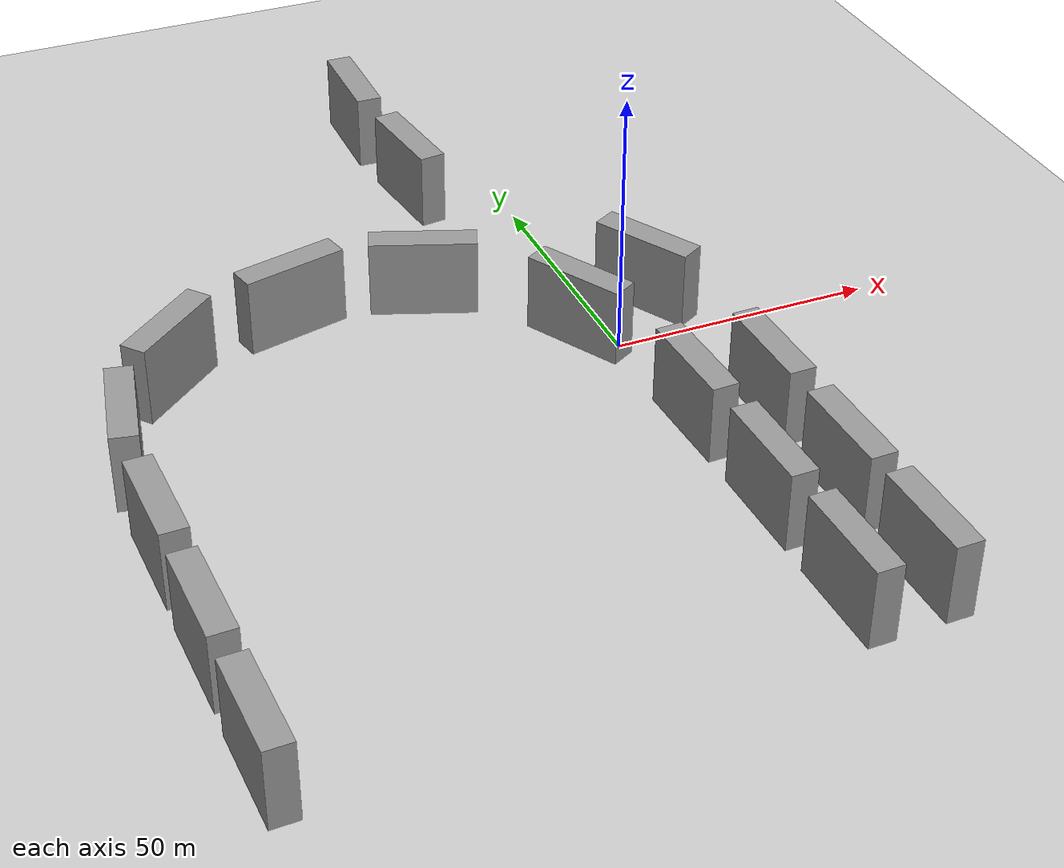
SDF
<sdf version="1.6">
 <world name="darpa_boxes">
  <model name="ground_plane">
   <static>1</static>
   <link name="link">
    <collision name="collision">
     <geometry><plane><normal>0 0 1</normal><size>2000 2000</size></plane></geometry>
     <surface>
      <contact><collide_bitmask>65535</collide_bitmask></contact>
      <friction><ode><mu>100</mu><mu2>50</mu2></ode></friction>
     </surface>
    </collision>
    <visual name="visual">
     <cast_shadows>0</cast_shadows>
     <geometry><plane><normal>0 0 1</normal><size>2000 2000</size></plane></geometry>
     <material>
      <script><uri>file://media/materials/scripts/gazebo.material</uri><name>Gazebo/Grey</name></script>
     </material>
    </visual>
   </link>
  </model>
  <model name="long_box">
   <link name="link">
    <inertial>
     <mass>1</mass>
     <inertia>
      <ixx>0.166667</ixx>
      <ixy>0</ixy>
      <ixz>0</ixz>
      <iyy>0.166667</iyy>
      <iyz>0</iyz>
      <izz>0.166667</izz>
     </inertia>
     <pose>0 0 7.5 0 -0 0</pose>
    </inertial>
    <visual name="visual">
     <geometry><box><size>5 20 15</size></box></geometry>
     <material>
      <script><name>Gazebo/Grey</name><uri>file://media/materials/scripts/gazebo.material</uri></script>
      <shader type="vertex"><normal_map>__default__</normal_map></shader>
      <ambient>0.3 0.3 0.3 1</ambient>
      <diffuse>0.7 0.7 0.7 1</diffuse>
      <specular>0.01 0.01 0.01 1</specular>
      <emissive>0 0 0 1</emissive>
     </material>
     <pose>0 0 7.5 0 -0 0</pose>
    </visual>
    <collision name="collision">
     <pose>0 0 7.5 0 -0 0</pose>
     <geometry><box><size>5 20 15</size></box></geometry>
     <surface>
      <friction>
       <ode><mu>1</mu><mu2>1</mu2><fdir1>0 0 0</fdir1><slip1>0</slip1><slip2>0</slip2></ode>
       <torsional>
        <coefficient>1</coefficient>
        <patch_radius>0</patch_radius>
        <surface_radius>0</surface_radius>
        <use_patch_radius>1</use_patch_radius>
        <ode><slip>0</slip></ode>
       </torsional>
      </friction>
      <bounce><restitution_coefficient>0</restitution_coefficient><threshold>1e+06</threshold></bounce>
      <contact>
       <collide_without_contact>0</collide_without_contact>
       <collide_without_contact_bitmask>1</collide_without_contact_bitmask>
       <collide_bitmask>1</collide_bitmask>
       <ode>
        <soft_cfm>0</soft_cfm>
        <soft_erp>0.2</soft_erp>
        <kp>1e+13</kp>
        <kd>1</kd>
        <max_vel>0.01</max_vel>
        <min_depth>0</min_depth>
       </ode>
       <bullet>
        <split_impulse>1</split_impulse>
        <split_impulse_penetration_threshold>-0.01</split_impulse_penetration_threshold>
        <soft_cfm>0</soft_cfm>
        <soft_erp>0.2</soft_erp>
        <kp>1e+13</kp>
        <kd>1</kd>
       </bullet>
      </contact>
     </surface>
    </collision>
   </link>
   <static>1</static>
   <pose>1.32402 -27.3069 -0.049551 0.005043 -0.00022 0.043493</pose>
  </model>
  <model name="long_box_clone">
   <link name="link">
    <inertial>
     <mass>1</mass>
     <inertia>
      <ixx>0.166667</ixx>
      <ixy>0</ixy>
      <ixz>0</ixz>
      <iyy>0.166667</iyy>
      <iyz>0</iyz>
      <izz>0.166667</izz>
     </inertia>
     <pose>0 0 7.5 0 -0 0</pose>
    </inertial>
    <visual name="visual">
     <geometry><box><size>5 20 15</size></box></geometry>
     <material>
      <script><name>Gazebo/Grey</name><uri>file://media/materials/scripts/gazebo.material</uri></script>
      <shader type="vertex"><normal_map>__default__</normal_map></shader>
      <ambient>0.3 0.3 0.3 1</ambient>
      <diffuse>0.7 0.7 0.7 1</diffuse>
      <specular>0.01 0.01 0.01 1</specular>
      <emissive>0 0 0 1</emissive>
     </material>
     <pose>0 0 7.5 0 -0 0</pose>
    </visual>
    <collision name="collision">
     <pose>0 0 7.5 0 -0 0</pose>
     <geometry><box><size>5 20 15</size></box></geometry>
     <surface>
      <friction>
       <ode><mu>1</mu><mu2>1</mu2><fdir1>0 0 0</fdir1><slip1>0</slip1><slip2>0</slip2></ode>
       <torsional>
        <coefficient>1</coefficient>
        <patch_radius>0</patch_radius>
        <surface_radius>0</surface_radius>
        <use_patch_radius>1</use_patch_radius>
        <ode><slip>0</slip></ode>
       </torsional>
      </friction>
      <bounce><restitution_coefficient>0</restitution_coefficient><threshold>1e+06</threshold></bounce>
      <contact>
       <collide_without_contact>0</collide_without_contact>
       <collide_without_contact_bitmask>1</collide_without_contact_bitmask>
       <collide_bitmask>1</collide_bitmask>
       <ode>
        <soft_cfm>0</soft_cfm>
        <soft_erp>0.2</soft_erp>
        <kp>1e+13</kp>
        <kd>1</kd>
        <max_vel>0.01</max_vel>
        <min_depth>0</min_depth>
       </ode>
       <bullet>
        <split_impulse>1</split_impulse>
        <split_impulse_penetration_threshold>-0.01</split_impulse_penetration_threshold>
        <soft_cfm>0</soft_cfm>
        <soft_erp>0.2</soft_erp>
        <kp>1e+13</kp>
        <kd>1</kd>
       </bullet>
      </contact>
     </surface>
    </collision>
   </link>
   <static>1</static>
   <pose>2.2166 -52.9463 -0.049551 0.005047 -0.000114 0.022472</pose>
  </model>
  <model name="long_box_clone_clone">
   <link name="link">
    <inertial>
     <mass>1</mass>
     <inertia>
      <ixx>0.166667</ixx>
      <ixy>0</ixy>
      <ixz>0</ixz>
      <iyy>0.166667</iyy>
      <iyz>0</iyz>
      <izz>0.166667</izz>
     </inertia>
     <pose>0 0 7.5 0 -0 0</pose>
    </inertial>
    <visual name="visual">
     <geometry><box><size>5 20 15</size></box></geometry>
     <material>
      <script><name>Gazebo/Grey</name><uri>file://media/materials/scripts/gazebo.material</uri></script>
      <shader type="vertex"><normal_map>__default__</normal_map></shader>
      <ambient>0.3 0.3 0.3 1</ambient>
      <diffuse>0.7 0.7 0.7 1</diffuse>
      <specular>0.01 0.01 0.01 1</specular>
      <emissive>0 0 0 1</emissive>
     </material>
     <pose>0 0 7.5 0 -0 0</pose>
    </visual>
    <collision name="collision">
     <pose>0 0 7.5 0 -0 0</pose>
     <geometry><box><size>5 20 15</size></box></geometry>
     <surface>
      <friction>
       <ode><mu>1</mu><mu2>1</mu2><fdir1>0 0 0</fdir1><slip1>0</slip1><slip2>0</slip2></ode>
       <torsional>
        <coefficient>1</coefficient>
        <patch_radius>0</patch_radius>
        <surface_radius>0</surface_radius>
        <use_patch_radius>1</use_patch_radius>
        <ode><slip>0</slip></ode>
       </torsional>
      </friction>
      <bounce><restitution_coefficient>0</restitution_coefficient><threshold>1e+06</threshold></bounce>
      <contact>
       <collide_without_contact>0</collide_without_contact>
       <collide_without_contact_bitmask>1</collide_without_contact_bitmask>
       <collide_bitmask>1</collide_bitmask>
       <ode>
        <soft_cfm>0</soft_cfm>
        <soft_erp>0.2</soft_erp>
        <kp>1e+13</kp>
        <kd>1</kd>
        <max_vel>0.01</max_vel>
        <min_depth>0</min_depth>
       </ode>
       <bullet>
        <split_impulse>1</split_impulse>
        <split_impulse_penetration_threshold>-0.01</split_impulse_penetration_threshold>
        <soft_cfm>0</soft_cfm>
        <soft_erp>0.2</soft_erp>
        <kp>1e+13</kp>
        <kd>1</kd>
       </bullet>
      </contact>
     </surface>
    </collision>
   </link>
   <static>1</static>
   <pose>2.59574 -78.262 -0.049551 0.005047 -0.000114 0.022472</pose>
  </model>
  <model name="long_box_clone_clone_25">
   <link name="link">
    <inertial>
     <mass>1</mass>
     <inertia>
      <ixx>0.166667</ixx>
      <ixy>0</ixy>
      <ixz>0</ixz>
      <iyy>0.166667</iyy>
      <iyz>0</iyz>
      <izz>0.166667</izz>
     </inertia>
     <pose>0 0 7.5 0 -0 0</pose>
    </inertial>
    <visual name="visual">
     <geometry><box><size>5 20 15</size></box></geometry>
     <material>
      <script><name>Gazebo/Grey</name><uri>file://media/materials/scripts/gazebo.material</uri></script>
      <shader type="vertex"><normal_map>__default__</normal_map></shader>
      <ambient>0.3 0.3 0.3 1</ambient>
      <diffuse>0.7 0.7 0.7 1</diffuse>
      <specular>0.01 0.01 0.01 1</specular>
      <emissive>0 0 0 1</emissive>
     </material>
     <pose>0 0 7.5 0 -0 0</pose>
    </visual>
    <collision name="collision">
     <pose>0 0 7.5 0 -0 0</pose>
     <geometry><box><size>5 20 15</size></box></geometry>
     <surface>
      <friction>
       <ode><mu>1</mu><mu2>1</mu2><fdir1>0 0 0</fdir1><slip1>0</slip1><slip2>0</slip2></ode>
       <torsional>
        <coefficient>1</coefficient>
        <patch_radius>0</patch_radius>
        <surface_radius>0</surface_radius>
        <use_patch_radius>1</use_patch_radius>
        <ode><slip>0</slip></ode>
       </torsional>
      </friction>
      <bounce><restitution_coefficient>0</restitution_coefficient><threshold>1e+06</threshold></bounce>
      <contact>
       <collide_without_contact>0</collide_without_contact>
       <collide_without_contact_bitmask>1</collide_without_contact_bitmask>
       <collide_bitmask>1</collide_bitmask>
       <ode>
        <soft_cfm>0</soft_cfm>
        <soft_erp>0.2</soft_erp>
        <kp>1e+13</kp>
        <kd>1</kd>
        <max_vel>0.01</max_vel>
        <min_depth>0</min_depth>
       </ode>
       <bullet>
        <split_impulse>1</split_impulse>
        <split_impulse_penetration_threshold>-0.01</split_impulse_penetration_threshold>
        <soft_cfm>0</soft_cfm>
        <soft_erp>0.2</soft_erp>
        <kp>1e+13</kp>
        <kd>1</kd>
       </bullet>
      </contact>
     </surface>
    </collision>
   </link>
   <static>1</static>
   <pose>16.538 -77.9247 -0.049551 0.005047 -0.000114 0.022472</pose>
  </model>
  <model name="long_box_clone_clone_26">
   <link name="link">
    <inertial>
     <mass>1</mass>
     <inertia>
      <ixx>0.166667</ixx>
      <ixy>0</ixy>
      <ixz>0</ixz>
      <iyy>0.166667</iyy>
      <iyz>0</iyz>
      <izz>0.166667</izz>
     </inertia>
     <pose>0 0 7.5 0 -0 0</pose>
    </inertial>
    <visual name="visual">
     <geometry><box><size>5 20 15</size></box></geometry>
     <material>
      <script><name>Gazebo/Grey</name><uri>file://media/materials/scripts/gazebo.material</uri></script>
      <shader type="vertex"><normal_map>__default__</normal_map></shader>
      <ambient>0.3 0.3 0.3 1</ambient>
      <diffuse>0.7 0.7 0.7 1</diffuse>
      <specular>0.01 0.01 0.01 1</specular>
      <emissive>0 0 0 1</emissive>
     </material>
     <pose>0 0 7.5 0 -0 0</pose>
    </visual>
    <collision name="collision">
     <pose>0 0 7.5 0 -0 0</pose>
     <geometry><box><size>5 20 15</size></box></geometry>
     <surface>
      <friction>
       <ode><mu>1</mu><mu2>1</mu2><fdir1>0 0 0</fdir1><slip1>0</slip1><slip2>0</slip2></ode>
       <torsional>
        <coefficient>1</coefficient>
        <patch_radius>0</patch_radius>
        <surface_radius>0</surface_radius>
        <use_patch_radius>1</use_patch_radius>
        <ode><slip>0</slip></ode>
       </torsional>
      </friction>
      <bounce><restitution_coefficient>0</restitution_coefficient><threshold>1e+06</threshold></bounce>
      <contact>
       <collide_without_contact>0</collide_without_contact>
       <collide_without_contact_bitmask>1</collide_without_contact_bitmask>
       <collide_bitmask>1</collide_bitmask>
       <ode>
        <soft_cfm>0</soft_cfm>
        <soft_erp>0.2</soft_erp>
        <kp>1e+13</kp>
        <kd>1</kd>
        <max_vel>0.01</max_vel>
        <min_depth>0</min_depth>
       </ode>
       <bullet>
        <split_impulse>1</split_impulse>
        <split_impulse_penetration_threshold>-0.01</split_impulse_penetration_threshold>
        <soft_cfm>0</soft_cfm>
        <soft_erp>0.2</soft_erp>
        <kp>1e+13</kp>
        <kd>1</kd>
       </bullet>
      </contact>
     </surface>
    </collision>
   </link>
   <static>1</static>
   <pose>16.0227 -53.7626 -0.049551 0.005047 -0.000114 0.022472</pose>
  </model>
  <model name="long_box_clone_clone_27">
   <link name="link">
    <inertial>
     <mass>1</mass>
     <inertia>
      <ixx>0.166667</ixx>
      <ixy>0</ixy>
      <ixz>0</ixz>
      <iyy>0.166667</iyy>
      <iyz>0</iyz>
      <izz>0.166667</izz>
     </inertia>
     <pose>0 0 7.5 0 -0 0</pose>
    </inertial>
    <visual name="visual">
     <geometry><box><size>5 20 15</size></box></geometry>
     <material>
      <script><name>Gazebo/Grey</name><uri>file://media/materials/scripts/gazebo.material</uri></script>
      <shader type="vertex"><normal_map>__default__</normal_map></shader>
      <ambient>0.3 0.3 0.3 1</ambient>
      <diffuse>0.7 0.7 0.7 1</diffuse>
      <specular>0.01 0.01 0.01 1</specular>
      <emissive>0 0 0 1</emissive>
     </material>
     <pose>0 0 7.5 0 -0 0</pose>
    </visual>
    <collision name="collision">
     <pose>0 0 7.5 0 -0 0</pose>
     <geometry><box><size>5 20 15</size></box></geometry>
     <surface>
      <friction>
       <ode><mu>1</mu><mu2>1</mu2><fdir1>0 0 0</fdir1><slip1>0</slip1><slip2>0</slip2></ode>
       <torsional>
        <coefficient>1</coefficient>
        <patch_radius>0</patch_radius>
        <surface_radius>0</surface_radius>
        <use_patch_radius>1</use_patch_radius>
        <ode><slip>0</slip></ode>
       </torsional>
      </friction>
      <bounce><restitution_coefficient>0</restitution_coefficient><threshold>1e+06</threshold></bounce>
      <contact>
       <collide_without_contact>0</collide_without_contact>
       <collide_without_contact_bitmask>1</collide_without_contact_bitmask>
       <collide_bitmask>1</collide_bitmask>
       <ode>
        <soft_cfm>0</soft_cfm>
        <soft_erp>0.2</soft_erp>
        <kp>1e+13</kp>
        <kd>1</kd>
        <max_vel>0.01</max_vel>
        <min_depth>0</min_depth>
       </ode>
       <bullet>
        <split_impulse>1</split_impulse>
        <split_impulse_penetration_threshold>-0.01</split_impulse_penetration_threshold>
        <soft_cfm>0</soft_cfm>
        <soft_erp>0.2</soft_erp>
        <kp>1e+13</kp>
        <kd>1</kd>
       </bullet>
      </contact>
     </surface>
    </collision>
   </link>
   <static>1</static>
   <pose>15.5474 -28.1082 -0.049551 0.005047 -0.000114 0.022472</pose>
  </model>
  <model name="long_box_clone_clone_29_clone_3_clone_clone_10">
   <link name="link">
    <inertial>
     <mass>1</mass>
     <inertia>
      <ixx>0.166667</ixx>
      <ixy>0</ixy>
      <ixz>0</ixz>
      <iyy>0.166667</iyy>
      <iyz>0</iyz>
      <izz>0.166667</izz>
     </inertia>
     <pose>0 0 7.5 0 -0 0</pose>
    </inertial>
    <visual name="visual">
     <geometry><box><size>5 20 15</size></box></geometry>
     <material>
      <script><name>Gazebo/Grey</name><uri>file://media/materials/scripts/gazebo.material</uri></script>
      <shader type="vertex"><normal_map>__default__</normal_map></shader>
      <ambient>0.3 0.3 0.3 1</ambient>
      <diffuse>0.7 0.7 0.7 1</diffuse>
      <specular>0.01 0.01 0.01 1</specular>
      <emissive>0 0 0 1</emissive>
     </material>
     <pose>0 0 7.5 0 -0 0</pose>
    </visual>
    <collision name="collision">
     <pose>0 0 7.5 0 -0 0</pose>
     <geometry><box><size>5 20 15</size></box></geometry>
     <surface>
      <friction>
       <ode><mu>1</mu><mu2>1</mu2><fdir1>0 0 0</fdir1><slip1>0</slip1><slip2>0</slip2></ode>
       <torsional>
        <coefficient>1</coefficient>
        <patch_radius>0</patch_radius>
        <surface_radius>0</surface_radius>
        <use_patch_radius>1</use_patch_radius>
        <ode><slip>0</slip></ode>
       </torsional>
      </friction>
      <bounce><restitution_coefficient>0</restitution_coefficient><threshold>1e+06</threshold></bounce>
      <contact>
       <collide_without_contact>0</collide_without_contact>
       <collide_without_contact_bitmask>1</collide_without_contact_bitmask>
       <collide_bitmask>1</collide_bitmask>
       <ode>
        <soft_cfm>0</soft_cfm>
        <soft_erp>0.2</soft_erp>
        <kp>1e+13</kp>
        <kd>1</kd>
        <max_vel>0.01</max_vel>
        <min_depth>0</min_depth>
       </ode>
       <bullet>
        <split_impulse>1</split_impulse>
        <split_impulse_penetration_threshold>-0.01</split_impulse_penetration_threshold>
        <soft_cfm>0</soft_cfm>
        <soft_erp>0.2</soft_erp>
        <kp>1e+13</kp>
        <kd>1</kd>
       </bullet>
      </contact>
     </surface>
    </collision>
   </link>
   <static>1</static>
   <pose>-91.9292 -78.3869 -0.049551 0.005046 -0.000145 0.028592</pose>
  </model>
  <model name="long_box_clone_clone_29_clone_3_clone_clone_11">
   <link name="link">
    <inertial>
     <mass>1</mass>
     <inertia>
      <ixx>0.166667</ixx>
      <ixy>0</ixy>
      <ixz>0</ixz>
      <iyy>0.166667</iyy>
      <iyz>0</iyz>
      <izz>0.166667</izz>
     </inertia>
     <pose>0 0 7.5 0 -0 0</pose>
    </inertial>
    <visual name="visual">
     <geometry><box><size>5 20 15</size></box></geometry>
     <material>
      <script><name>Gazebo/Grey</name><uri>file://media/materials/scripts/gazebo.material</uri></script>
      <shader type="vertex"><normal_map>__default__</normal_map></shader>
      <ambient>0.3 0.3 0.3 1</ambient>
      <diffuse>0.7 0.7 0.7 1</diffuse>
      <specular>0.01 0.01 0.01 1</specular>
      <emissive>0 0 0 1</emissive>
     </material>
     <pose>0 0 7.5 0 -0 0</pose>
    </visual>
    <collision name="collision">
     <pose>0 0 7.5 0 -0 0</pose>
     <geometry><box><size>5 20 15</size></box></geometry>
     <surface>
      <friction>
       <ode><mu>1</mu><mu2>1</mu2><fdir1>0 0 0</fdir1><slip1>0</slip1><slip2>0</slip2></ode>
       <torsional>
        <coefficient>1</coefficient>
        <patch_radius>0</patch_radius>
        <surface_radius>0</surface_radius>
        <use_patch_radius>1</use_patch_radius>
        <ode><slip>0</slip></ode>
       </torsional>
      </friction>
      <bounce><restitution_coefficient>0</restitution_coefficient><threshold>1e+06</threshold></bounce>
      <contact>
       <collide_without_contact>0</collide_without_contact>
       <collide_without_contact_bitmask>1</collide_without_contact_bitmask>
       <collide_bitmask>1</collide_bitmask>
       <ode>
        <soft_cfm>0</soft_cfm>
        <soft_erp>0.2</soft_erp>
        <kp>1e+13</kp>
        <kd>1</kd>
        <max_vel>0.01</max_vel>
        <min_depth>0</min_depth>
       </ode>
       <bullet>
        <split_impulse>1</split_impulse>
        <split_impulse_penetration_threshold>-0.01</split_impulse_penetration_threshold>
        <soft_cfm>0</soft_cfm>
        <soft_erp>0.2</soft_erp>
        <kp>1e+13</kp>
        <kd>1</kd>
       </bullet>
      </contact>
     </surface>
    </collision>
   </link>
   <static>1</static>
   <pose>-92.4086 -53.548 -0.049551 0.005046 -0.000145 0.028592</pose>
  </model>
  <model name="long_box_clone_clone_29_clone_3_clone_clone_12">
   <link name="link">
    <inertial>
     <mass>1</mass>
     <inertia>
      <ixx>0.166667</ixx>
      <ixy>0</ixy>
      <ixz>0</ixz>
      <iyy>0.166667</iyy>
      <iyz>0</iyz>
      <izz>0.166667</izz>
     </inertia>
     <pose>0 0 7.5 0 -0 0</pose>
    </inertial>
    <visual name="visual">
     <geometry><box><size>5 20 15</size></box></geometry>
     <material>
      <script><name>Gazebo/Grey</name><uri>file://media/materials/scripts/gazebo.material</uri></script>
      <shader type="vertex"><normal_map>__default__</normal_map></shader>
      <ambient>0.3 0.3 0.3 1</ambient>
      <diffuse>0.7 0.7 0.7 1</diffuse>
      <specular>0.01 0.01 0.01 1</specular>
      <emissive>0 0 0 1</emissive>
     </material>
     <pose>0 0 7.5 0 -0 0</pose>
    </visual>
    <collision name="collision">
     <pose>0 0 7.5 0 -0 0</pose>
     <geometry><box><size>5 20 15</size></box></geometry>
     <surface>
      <friction>
       <ode><mu>1</mu><mu2>1</mu2><fdir1>0 0 0</fdir1><slip1>0</slip1><slip2>0</slip2></ode>
       <torsional>
        <coefficient>1</coefficient>
        <patch_radius>0</patch_radius>
        <surface_radius>0</surface_radius>
        <use_patch_radius>1</use_patch_radius>
        <ode><slip>0</slip></ode>
       </torsional>
      </friction>
      <bounce><restitution_coefficient>0</restitution_coefficient><threshold>1e+06</threshold></bounce>
      <contact>
       <collide_without_contact>0</collide_without_contact>
       <collide_without_contact_bitmask>1</collide_without_contact_bitmask>
       <collide_bitmask>1</collide_bitmask>
       <ode>
        <soft_cfm>0</soft_cfm>
        <soft_erp>0.2</soft_erp>
        <kp>1e+13</kp>
        <kd>1</kd>
        <max_vel>0.01</max_vel>
        <min_depth>0</min_depth>
       </ode>
       <bullet>
        <split_impulse>1</split_impulse>
        <split_impulse_penetration_threshold>-0.01</split_impulse_penetration_threshold>
        <soft_cfm>0</soft_cfm>
        <soft_erp>0.2</soft_erp>
        <kp>1e+13</kp>
        <kd>1</kd>
       </bullet>
      </contact>
     </surface>
    </collision>
   </link>
   <static>1</static>
   <pose>-92.8158 -28.7118 -0.049551 0.005046 -0.000145 0.028592</pose>
  </model>
  <model name="long_box_clone_clone_29_clone_3_clone_clone_13">
   <link name="link">
    <inertial>
     <mass>1</mass>
     <inertia>
      <ixx>0.166667</ixx>
      <ixy>0</ixy>
      <ixz>0</ixz>
      <iyy>0.166667</iyy>
      <iyz>0</iyz>
      <izz>0.166667</izz>
     </inertia>
     <pose>0 0 7.5 0 -0 0</pose>
    </inertial>
    <visual name="visual">
     <geometry><box><size>5 20 15</size></box></geometry>
     <material>
      <script><name>Gazebo/Grey</name><uri>file://media/materials/scripts/gazebo.material</uri></script>
      <shader type="vertex"><normal_map>__default__</normal_map></shader>
      <ambient>0.3 0.3 0.3 1</ambient>
      <diffuse>0.7 0.7 0.7 1</diffuse>
      <specular>0.01 0.01 0.01 1</specular>
      <emissive>0 0 0 1</emissive>
     </material>
     <pose>0 0 7.5 0 -0 0</pose>
    </visual>
    <collision name="collision">
     <pose>0 0 7.5 0 -0 0</pose>
     <geometry><box><size>5 20 15</size></box></geometry>
     <surface>
      <friction>
       <ode><mu>1</mu><mu2>1</mu2><fdir1>0 0 0</fdir1><slip1>0</slip1><slip2>0</slip2></ode>
       <torsional>
        <coefficient>1</coefficient>
        <patch_radius>0</patch_radius>
        <surface_radius>0</surface_radius>
        <use_patch_radius>1</use_patch_radius>
        <ode><slip>0</slip></ode>
       </torsional>
      </friction>
      <bounce><restitution_coefficient>0</restitution_coefficient><threshold>1e+06</threshold></bounce>
      <contact>
       <collide_without_contact>0</collide_without_contact>
       <collide_without_contact_bitmask>1</collide_without_contact_bitmask>
       <collide_bitmask>1</collide_bitmask>
       <ode>
        <soft_cfm>0</soft_cfm>
        <soft_erp>0.2</soft_erp>
        <kp>1e+13</kp>
        <kd>1</kd>
        <max_vel>0.01</max_vel>
        <min_depth>0</min_depth>
       </ode>
       <bullet>
        <split_impulse>1</split_impulse>
        <split_impulse_penetration_threshold>-0.01</split_impulse_penetration_threshold>
        <soft_cfm>0</soft_cfm>
        <soft_erp>0.2</soft_erp>
        <kp>1e+13</kp>
        <kd>1</kd>
       </bullet>
      </contact>
     </surface>
    </collision>
   </link>
   <static>1</static>
   <pose>-91.7222 -2.66594 -0.049551 0.004945 0.001016 -0.202774</pose>
  </model>
  <model name="long_box_clone_clone_29_clone_3_clone_clone_14">
   <link name="link">
    <inertial>
     <mass>1</mass>
     <inertia>
      <ixx>0.166667</ixx>
      <ixy>0</ixy>
      <ixz>0</ixz>
      <iyy>0.166667</iyy>
      <iyz>0</iyz>
      <izz>0.166667</izz>
     </inertia>
     <pose>0 0 7.5 0 -0 0</pose>
    </inertial>
    <visual name="visual">
     <geometry><box><size>5 20 15</size></box></geometry>
     <material>
      <script><name>Gazebo/Grey</name><uri>file://media/materials/scripts/gazebo.material</uri></script>
      <shader type="vertex"><normal_map>__default__</normal_map></shader>
      <ambient>0.3 0.3 0.3 1</ambient>
      <diffuse>0.7 0.7 0.7 1</diffuse>
      <specular>0.01 0.01 0.01 1</specular>
      <emissive>0 0 0 1</emissive>
     </material>
     <pose>0 0 7.5 0 -0 0</pose>
    </visual>
    <collision name="collision">
     <pose>0 0 7.5 0 -0 0</pose>
     <geometry><box><size>5 20 15</size></box></geometry>
     <surface>
      <friction>
       <ode><mu>1</mu><mu2>1</mu2><fdir1>0 0 0</fdir1><slip1>0</slip1><slip2>0</slip2></ode>
       <torsional>
        <coefficient>1</coefficient>
        <patch_radius>0</patch_radius>
        <surface_radius>0</surface_radius>
        <use_patch_radius>1</use_patch_radius>
        <ode><slip>0</slip></ode>
       </torsional>
      </friction>
      <bounce><restitution_coefficient>0</restitution_coefficient><threshold>1e+06</threshold></bounce>
      <contact>
       <collide_without_contact>0</collide_without_contact>
       <collide_without_contact_bitmask>1</collide_without_contact_bitmask>
       <collide_bitmask>1</collide_bitmask>
       <ode>
        <soft_cfm>0</soft_cfm>
        <soft_erp>0.2</soft_erp>
        <kp>1e+13</kp>
        <kd>1</kd>
        <max_vel>0.01</max_vel>
        <min_depth>0</min_depth>
       </ode>
       <bullet>
        <split_impulse>1</split_impulse>
        <split_impulse_penetration_threshold>-0.01</split_impulse_penetration_threshold>
        <soft_cfm>0</soft_cfm>
        <soft_erp>0.2</soft_erp>
        <kp>1e+13</kp>
        <kd>1</kd>
       </bullet>
      </contact>
     </surface>
    </collision>
   </link>
   <static>1</static>
   <pose>-78.5615 17.9495 -0.049551 0.003235 0.003875 -0.875398</pose>
  </model>
  <model name="long_box_clone_clone_29_clone_3_clone_clone_14_clone">
   <link name="link">
    <inertial>
     <mass>1</mass>
     <inertia>
      <ixx>0.166667</ixx>
      <ixy>0</ixy>
      <ixz>0</ixz>
      <iyy>0.166667</iyy>
      <iyz>0</iyz>
      <izz>0.166667</izz>
     </inertia>
     <pose>0 0 7.5 0 -0 0</pose>
    </inertial>
    <visual name="visual">
     <geometry><box><size>5 20 15</size></box></geometry>
     <material>
      <script><name>Gazebo/Grey</name><uri>file://media/materials/scripts/gazebo.material</uri></script>
      <shader type="vertex"><normal_map>__default__</normal_map></shader>
      <ambient>0.3 0.3 0.3 1</ambient>
      <diffuse>0.7 0.7 0.7 1</diffuse>
      <specular>0.01 0.01 0.01 1</specular>
      <emissive>0 0 0 1</emissive>
     </material>
     <pose>0 0 7.5 0 -0 0</pose>
    </visual>
    <collision name="collision">
     <pose>0 0 7.5 0 -0 0</pose>
     <geometry><box><size>5 20 15</size></box></geometry>
     <surface>
      <friction>
       <ode><mu>1</mu><mu2>1</mu2><fdir1>0 0 0</fdir1><slip1>0</slip1><slip2>0</slip2></ode>
       <torsional>
        <coefficient>1</coefficient>
        <patch_radius>0</patch_radius>
        <surface_radius>0</surface_radius>
        <use_patch_radius>1</use_patch_radius>
        <ode><slip>0</slip></ode>
       </torsional>
      </friction>
      <bounce><restitution_coefficient>0</restitution_coefficient><threshold>1e+06</threshold></bounce>
      <contact>
       <collide_without_contact>0</collide_without_contact>
       <collide_without_contact_bitmask>1</collide_without_contact_bitmask>
       <collide_bitmask>1</collide_bitmask>
       <ode>
        <soft_cfm>0</soft_cfm>
        <soft_erp>0.2</soft_erp>
        <kp>1e+13</kp>
        <kd>1</kd>
        <max_vel>0.01</max_vel>
        <min_depth>0</min_depth>
       </ode>
       <bullet>
        <split_impulse>1</split_impulse>
        <split_impulse_penetration_threshold>-0.01</split_impulse_penetration_threshold>
        <soft_cfm>0</soft_cfm>
        <soft_erp>0.2</soft_erp>
        <kp>1e+13</kp>
        <kd>1</kd>
       </bullet>
      </contact>
     </surface>
    </collision>
   </link>
   <static>1</static>
   <pose>-53.1656 28.2391 -0.049551 0.001197 0.004904 -1.33154</pose>
  </model>
  <model name="long_box_clone_clone_29_clone_3_clone_clone_14_clone_clone">
   <link name="link">
    <inertial>
     <mass>1</mass>
     <inertia>
      <ixx>0.166667</ixx>
      <ixy>0</ixy>
      <ixz>0</ixz>
      <iyy>0.166667</iyy>
      <iyz>0</iyz>
      <izz>0.166667</izz>
     </inertia>
     <pose>0 0 7.5 0 -0 0</pose>
    </inertial>
    <visual name="visual">
     <geometry><box><size>5 20 15</size></box></geometry>
     <material>
      <script><name>Gazebo/Grey</name><uri>file://media/materials/scripts/gazebo.material</uri></script>
      <shader type="vertex"><normal_map>__default__</normal_map></shader>
      <ambient>0.3 0.3 0.3 1</ambient>
      <diffuse>0.7 0.7 0.7 1</diffuse>
      <specular>0.01 0.01 0.01 1</specular>
      <emissive>0 0 0 1</emissive>
     </material>
     <pose>0 0 7.5 0 -0 0</pose>
    </visual>
    <collision name="collision">
     <pose>0 0 7.5 0 -0 0</pose>
     <geometry><box><size>5 20 15</size></box></geometry>
     <surface>
      <friction>
       <ode><mu>1</mu><mu2>1</mu2><fdir1>0 0 0</fdir1><slip1>0</slip1><slip2>0</slip2></ode>
       <torsional>
        <coefficient>1</coefficient>
        <patch_radius>0</patch_radius>
        <surface_radius>0</surface_radius>
        <use_patch_radius>1</use_patch_radius>
        <ode><slip>0</slip></ode>
       </torsional>
      </friction>
      <bounce><restitution_coefficient>0</restitution_coefficient><threshold>1e+06</threshold></bounce>
      <contact>
       <collide_without_contact>0</collide_without_contact>
       <collide_without_contact_bitmask>1</collide_without_contact_bitmask>
       <collide_bitmask>1</collide_bitmask>
       <ode>
        <soft_cfm>0</soft_cfm>
        <soft_erp>0.2</soft_erp>
        <kp>1e+13</kp>
        <kd>1</kd>
        <max_vel>0.01</max_vel>
        <min_depth>0</min_depth>
       </ode>
       <bullet>
        <split_impulse>1</split_impulse>
        <split_impulse_penetration_threshold>-0.01</split_impulse_penetration_threshold>
        <soft_cfm>0</soft_cfm>
        <soft_erp>0.2</soft_erp>
        <kp>1e+13</kp>
        <kd>1</kd>
       </bullet>
      </contact>
     </surface>
    </collision>
   </link>
   <static>1</static>
   <pose>-27.9685 26.4333 -0.049551 -0.00176 0.004731 -1.92704</pose>
  </model>
  <model name="long_box_clone_clone_29_clone_3_clone_clone_14_clone_clone_0">
   <link name="link">
    <inertial>
     <mass>1</mass>
     <inertia>
      <ixx>0.166667</ixx>
      <ixy>0</ixy>
      <ixz>0</ixz>
      <iyy>0.166667</iyy>
      <iyz>0</iyz>
      <izz>0.166667</izz>
     </inertia>
     <pose>0 0 7.5 0 -0 0</pose>
    </inertial>
    <visual name="visual">
     <geometry><box><size>5 20 15</size></box></geometry>
     <material>
      <script><name>Gazebo/Grey</name><uri>file://media/materials/scripts/gazebo.material</uri></script>
      <shader type="vertex"><normal_map>__default__</normal_map></shader>
      <ambient>0.3 0.3 0.3 1</ambient>
      <diffuse>0.7 0.7 0.7 1</diffuse>
      <specular>0.01 0.01 0.01 1</specular>
      <emissive>0 0 0 1</emissive>
     </material>
     <pose>0 0 7.5 0 -0 0</pose>
    </visual>
    <collision name="collision">
     <pose>0 0 7.5 0 -0 0</pose>
     <geometry><box><size>5 20 15</size></box></geometry>
     <surface>
      <friction>
       <ode><mu>1</mu><mu2>1</mu2><fdir1>0 0 0</fdir1><slip1>0</slip1><slip2>0</slip2></ode>
       <torsional>
        <coefficient>1</coefficient>
        <patch_radius>0</patch_radius>
        <surface_radius>0</surface_radius>
        <use_patch_radius>1</use_patch_radius>
        <ode><slip>0</slip></ode>
       </torsional>
      </friction>
      <bounce><restitution_coefficient>0</restitution_coefficient><threshold>1e+06</threshold></bounce>
      <contact>
       <collide_without_contact>0</collide_without_contact>
       <collide_without_contact_bitmask>1</collide_without_contact_bitmask>
       <collide_bitmask>1</collide_bitmask>
       <ode>
        <soft_cfm>0</soft_cfm>
        <soft_erp>0.2</soft_erp>
        <kp>1e+13</kp>
        <kd>1</kd>
        <max_vel>0.01</max_vel>
        <min_depth>0</min_depth>
       </ode>
       <bullet>
        <split_impulse>1</split_impulse>
        <split_impulse_penetration_threshold>-0.01</split_impulse_penetration_threshold>
        <soft_cfm>0</soft_cfm>
        <soft_erp>0.2</soft_erp>
        <kp>1e+13</kp>
        <kd>1</kd>
       </bullet>
      </contact>
     </surface>
    </collision>
   </link>
   <static>1</static>
   <pose>-5.72018 5.11615 -0.049551 -0.004407 0.002461 -2.6324</pose>
  </model>
  <model name="long_box_clone_clone_29_clone_3_clone_clone_14_clone_clone_0_clone">
   <link name="link">
    <inertial>
     <mass>1</mass>
     <inertia>
      <ixx>0.166667</ixx>
      <ixy>0</ixy>
      <ixz>0</ixz>
      <iyy>0.166667</iyy>
      <iyz>0</iyz>
      <izz>0.166667</izz>
     </inertia>
     <pose>0 0 7.5 0 -0 0</pose>
    </inertial>
    <visual name="visual">
     <geometry><box><size>5 20 15</size></box></geometry>
     <material>
      <script><name>Gazebo/Grey</name><uri>file://media/materials/scripts/gazebo.material</uri></script>
      <shader type="vertex"><normal_map>__default__</normal_map></shader>
      <ambient>0.3 0.3 0.3 1</ambient>
      <diffuse>0.7 0.7 0.7 1</diffuse>
      <specular>0.01 0.01 0.01 1</specular>
      <emissive>0 0 0 1</emissive>
     </material>
     <pose>0 0 7.5 0 -0 0</pose>
    </visual>
    <collision name="collision">
     <pose>0 0 7.5 0 -0 0</pose>
     <geometry><box><size>5 20 15</size></box></geometry>
     <surface>
      <friction>
       <ode><mu>1</mu><mu2>1</mu2><fdir1>0 0 0</fdir1><slip1>0</slip1><slip2>0</slip2></ode>
       <torsional>
        <coefficient>1</coefficient>
        <patch_radius>0</patch_radius>
        <surface_radius>0</surface_radius>
        <use_patch_radius>1</use_patch_radius>
        <ode><slip>0</slip></ode>
       </torsional>
      </friction>
      <bounce><restitution_coefficient>0</restitution_coefficient><threshold>1e+06</threshold></bounce>
      <contact>
       <collide_without_contact>0</collide_without_contact>
       <collide_without_contact_bitmask>1</collide_without_contact_bitmask>
       <collide_bitmask>1</collide_bitmask>
       <ode>
        <soft_cfm>0</soft_cfm>
        <soft_erp>0.2</soft_erp>
        <kp>1e+13</kp>
        <kd>1</kd>
        <max_vel>0.01</max_vel>
        <min_depth>0</min_depth>
       </ode>
       <bullet>
        <split_impulse>1</split_impulse>
        <split_impulse_penetration_threshold>-0.01</split_impulse_penetration_threshold>
        <soft_cfm>0</soft_cfm>
        <soft_erp>0.2</soft_erp>
        <kp>1e+13</kp>
        <kd>1</kd>
       </bullet>
      </contact>
     </surface>
    </collision>
   </link>
   <static>1</static>
   <pose>10.7917 11.6253 -0.049551 -0.004407 0.002461 -2.6324</pose>
  </model>
  <model name="long_box_clone_clone_29_clone_3_clone_clone_14_clone_clone_0_clone_0_clone_5">
   <link name="link">
    <inertial>
     <mass>1</mass>
     <inertia>
      <ixx>0.166667</ixx>
      <ixy>0</ixy>
      <ixz>0</ixz>
      <iyy>0.166667</iyy>
      <iyz>0</iyz>
      <izz>0.166667</izz>
     </inertia>
     <pose>0 0 7.5 0 -0 0</pose>
    </inertial>
    <visual name="visual">
     <geometry><box><size>5 20 15</size></box></geometry>
     <material>
      <script><name>Gazebo/Grey</name><uri>file://media/materials/scripts/gazebo.material</uri></script>
      <shader type="vertex"><normal_map>__default__</normal_map></shader>
      <ambient>0.3 0.3 0.3 1</ambient>
      <diffuse>0.7 0.7 0.7 1</diffuse>
      <specular>0.01 0.01 0.01 1</specular>
      <emissive>0 0 0 1</emissive>
     </material>
     <pose>0 0 7.5 0 -0 0</pose>
    </visual>
    <collision name="collision">
     <pose>0 0 7.5 0 -0 0</pose>
     <geometry><box><size>5 20 15</size></box></geometry>
     <surface>
      <friction>
       <ode><mu>1</mu><mu2>1</mu2><fdir1>0 0 0</fdir1><slip1>0</slip1><slip2>0</slip2></ode>
       <torsional>
        <coefficient>1</coefficient>
        <patch_radius>0</patch_radius>
        <surface_radius>0</surface_radius>
        <use_patch_radius>1</use_patch_radius>
        <ode><slip>0</slip></ode>
       </torsional>
      </friction>
      <bounce><restitution_coefficient>0</restitution_coefficient><threshold>1e+06</threshold></bounce>
      <contact>
       <collide_without_contact>0</collide_without_contact>
       <collide_without_contact_bitmask>1</collide_without_contact_bitmask>
       <collide_bitmask>1</collide_bitmask>
       <ode>
        <soft_cfm>0</soft_cfm>
        <soft_erp>0.2</soft_erp>
        <kp>1e+13</kp>
        <kd>1</kd>
        <max_vel>0.01</max_vel>
        <min_depth>0</min_depth>
       </ode>
       <bullet>
        <split_impulse>1</split_impulse>
        <split_impulse_penetration_threshold>-0.01</split_impulse_penetration_threshold>
        <soft_cfm>0</soft_cfm>
        <soft_erp>0.2</soft_erp>
        <kp>1e+13</kp>
        <kd>1</kd>
       </bullet>
      </contact>
     </surface>
    </collision>
   </link>
   <static>1</static>
   <pose>-18.7874 91.7171 -0.049551 0.005048 4.6e-05 -0.00917</pose>
  </model>
  <model name="long_box_clone_clone_29_clone_3_clone_clone_14_clone_clone_0_clone_0_clone_6">
   <link name="link">
    <inertial>
     <mass>1</mass>
     <inertia>
      <ixx>0.166667</ixx>
      <ixy>0</ixy>
      <ixz>0</ixz>
      <iyy>0.166667</iyy>
      <iyz>0</iyz>
      <izz>0.166667</izz>
     </inertia>
     <pose>0 0 7.5 0 -0 0</pose>
    </inertial>
    <visual name="visual">
     <geometry><box><size>5 20 15</size></box></geometry>
     <material>
      <script><name>Gazebo/Grey</name><uri>file://media/materials/scripts/gazebo.material</uri></script>
      <shader type="vertex"><normal_map>__default__</normal_map></shader>
      <ambient>0.3 0.3 0.3 1</ambient>
      <diffuse>0.7 0.7 0.7 1</diffuse>
      <specular>0.01 0.01 0.01 1</specular>
      <emissive>0 0 0 1</emissive>
     </material>
     <pose>0 0 7.5 0 -0 0</pose>
    </visual>
    <collision name="collision">
     <pose>0 0 7.5 0 -0 0</pose>
     <geometry><box><size>5 20 15</size></box></geometry>
     <surface>
      <friction>
       <ode><mu>1</mu><mu2>1</mu2><fdir1>0 0 0</fdir1><slip1>0</slip1><slip2>0</slip2></ode>
       <torsional>
        <coefficient>1</coefficient>
        <patch_radius>0</patch_radius>
        <surface_radius>0</surface_radius>
        <use_patch_radius>1</use_patch_radius>
        <ode><slip>0</slip></ode>
       </torsional>
      </friction>
      <bounce><restitution_coefficient>0</restitution_coefficient><threshold>1e+06</threshold></bounce>
      <contact>
       <collide_without_contact>0</collide_without_contact>
       <collide_without_contact_bitmask>1</collide_without_contact_bitmask>
       <collide_bitmask>1</collide_bitmask>
       <ode>
        <soft_cfm>0</soft_cfm>
        <soft_erp>0.2</soft_erp>
        <kp>1e+13</kp>
        <kd>1</kd>
        <max_vel>0.01</max_vel>
        <min_depth>0</min_depth>
       </ode>
       <bullet>
        <split_impulse>1</split_impulse>
        <split_impulse_penetration_threshold>-0.01</split_impulse_penetration_threshold>
        <soft_cfm>0</soft_cfm>
        <soft_erp>0.2</soft_erp>
        <kp>1e+13</kp>
        <kd>1</kd>
       </bullet>
      </contact>
     </surface>
    </collision>
   </link>
   <static>1</static>
   <pose>-16.6939 64.2354 -0.049551 0.005007 -0.000638 0.126704</pose>
  </model>
 </world>
</sdf>
